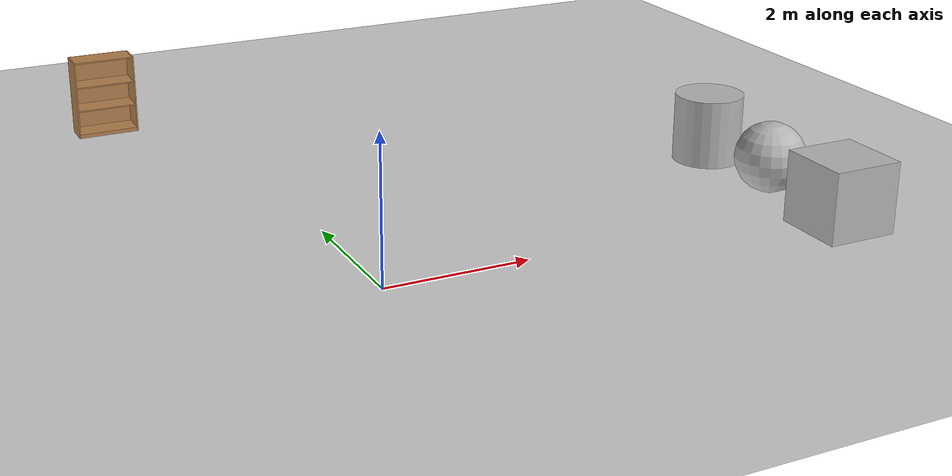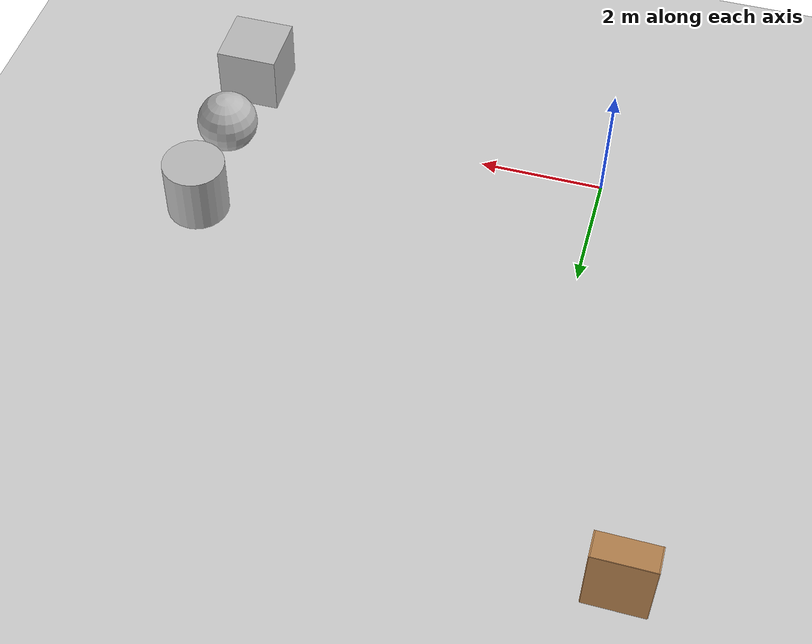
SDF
<sdf version="1.7">
 <world name="default">
  <light name="sun" type="directional">
   <pose>0 0 10 0 -0 0</pose>
   <diffuse>0.8 0.8 0.8 1</diffuse>
   <specular>0.2 0.2 0.2 1</specular>
   <attenuation>
    <range>1000</range>
    <constant>0.9</constant>
    <linear>0.01</linear>
    <quadratic>0.001</quadratic>
   </attenuation>
   <direction>-0.5 0.1 -0.9</direction>
   <spot><inner_angle>0</inner_angle><outer_angle>0</outer_angle><falloff>0</falloff></spot>
  </light>
  <model name="ground_plane">
   <static>1</static>
   <link name="link">
    <collision name="collision">
     <geometry><plane><normal>0 0 1</normal><size>100 100</size></plane></geometry>
     <surface><friction><ode><mu>100</mu><mu2>50</mu2></ode></friction></surface>
    </collision>
    <visual name="visual">
     <cast_shadows>0</cast_shadows>
     <geometry><plane><normal>0 0 1</normal><size>100 100</size></plane></geometry>
     <material>
      <script><uri>file://media/materials/scripts/gazebo.material</uri><name>Gazebo/Grey</name></script>
     </material>
    </visual>
   </link>
  </model>
  <gravity>0 0 -9.8</gravity>
  <magnetic_field>6e-06 2.3e-05 -4.2e-05</magnetic_field>
  <atmosphere type="adiabatic"/>
  <physics type="ode">
   <max_step_size>0.001</max_step_size>
   <real_time_factor>1</real_time_factor>
   <real_time_update_rate>1000</real_time_update_rate>
  </physics>
  <scene><ambient>0.4 0.4 0.4 1</ambient><background>0.7 0.7 0.7 1</background><shadows>1</shadows></scene>
  <spherical_coordinates>
   <surface_model>EARTH_WGS84</surface_model>
   <latitude_deg>0</latitude_deg>
   <longitude_deg>0</longitude_deg>
   <elevation>0</elevation>
   <heading_deg>0</heading_deg>
  </spherical_coordinates>
  <model name="bookshelf">
   <static>1</static>
   <link name="link">
    <inertial><mass>1</mass></inertial>
    <collision name="back">
     <pose>0 0.005 0.6 0 -0 0</pose>
     <geometry><box><size>0.9 0.01 1.2</size></box></geometry>
    </collision>
    <visual name="visual1">
     <pose>0 0.005 0.6 0 -0 0</pose>
     <geometry><box><size>0.9 0.01 1.2</size></box></geometry>
     <material>
      <script><uri>file://media/materials/scripts/gazebo.material</uri><name>Gazebo/Wood</name></script>
     </material>
    </visual>
    <collision name="left_side">
     <pose>0.45 -0.195 0.6 0 -0 0</pose>
     <geometry><box><size>0.02 0.4 1.2</size></box></geometry>
    </collision>
    <visual name="visual2">
     <pose>0.45 -0.195 0.6 0 -0 0</pose>
     <geometry><box><size>0.02 0.4 1.2</size></box></geometry>
     <material>
      <script><uri>file://media/materials/scripts/gazebo.material</uri><name>Gazebo/Wood</name></script>
     </material>
    </visual>
    <collision name="right_side">
     <pose>-0.45 -0.195 0.6 0 -0 0</pose>
     <geometry><box><size>0.02 0.4 1.2</size></box></geometry>
    </collision>
    <visual name="visual3">
     <pose>-0.45 -0.195 0.6 0 -0 0</pose>
     <geometry><box><size>0.02 0.4 1.2</size></box></geometry>
     <material>
      <script><uri>file://media/materials/scripts/gazebo.material</uri><name>Gazebo/Wood</name></script>
     </material>
    </visual>
    <collision name="bottom">
     <pose>0 -0.195 0.03 0 -0 0</pose>
     <geometry><box><size>0.88 0.4 0.06</size></box></geometry>
    </collision>
    <visual name="visual4">
     <pose>0 -0.195 0.03 0 -0 0</pose>
     <geometry><box><size>0.88 0.4 0.06</size></box></geometry>
     <material>
      <script><uri>file://media/materials/scripts/gazebo.material</uri><name>Gazebo/Wood</name></script>
     </material>
    </visual>
    <collision name="top">
     <pose>0 -0.195 1.19 0 -0 0</pose>
     <geometry><box><size>0.88 0.4 0.02</size></box></geometry>
    </collision>
    <visual name="visual5">
     <pose>0 -0.195 1.19 0 -0 0</pose>
     <geometry><box><size>0.88 0.4 0.02</size></box></geometry>
     <material>
      <script><uri>file://media/materials/scripts/gazebo.material</uri><name>Gazebo/Wood</name></script>
     </material>
    </visual>
    <collision name="low_shelf">
     <pose>0 -0.195 0.43 0 -0 0</pose>
     <geometry><box><size>0.88 0.4 0.02</size></box></geometry>
    </collision>
    <visual name="visual6">
     <pose>0 -0.195 0.43 0 -0 0</pose>
     <geometry><box><size>0.88 0.4 0.02</size></box></geometry>
     <material>
      <script><uri>file://media/materials/scripts/gazebo.material</uri><name>Gazebo/Wood</name></script>
     </material>
    </visual>
    <collision name="high_shelf">
     <pose>0 -0.195 0.8 0 -0 0</pose>
     <geometry><box><size>0.88 0.4 0.02</size></box></geometry>
    </collision>
    <visual name="visual7">
     <pose>0 -0.195 0.8 0 -0 0</pose>
     <geometry><box><size>0.88 0.4 0.02</size></box></geometry>
     <material>
      <script><uri>file://media/materials/scripts/gazebo.material</uri><name>Gazebo/Wood</name></script>
     </material>
    </visual>
   </link>
   <pose>-1.55799 7.45467 0 0 -0 0</pose>
  </model>
  <model name="textured_shapes">
   <pose>6.18802 0.67194 0.5 0 -0 0</pose>
   <link name="box">
    <pose>0 -1.5 0 0 -0 0</pose>
    <collision name="collision"><geometry><box><size>1 1 1</size></box></geometry></collision>
    <visual name="visual">
     <geometry><box><size>1 1 1</size></box></geometry>
     <material>
      <script>
       <uri>model://textured_shapes/materials/scripts</uri>
       <uri>model://textured_shapes/materials/textures</uri>
       <name>TexturedShape/Squares</name>
      </script>
     </material>
    </visual>
    <inertial>
     <inertia><ixx>1</ixx><ixy>0</ixy><ixz>0</ixz><iyy>1</iyy><iyz>0</iyz><izz>1</izz></inertia>
     <mass>1</mass>
    </inertial>
   </link>
   <link name="sphere">
    <collision name="collision"><geometry><sphere><radius>0.5</radius></sphere></geometry></collision>
    <visual name="visual">
     <geometry><sphere><radius>0.5</radius></sphere></geometry>
     <material>
      <script>
       <uri>model://textured_shapes/materials/scripts</uri>
       <uri>model://textured_shapes/materials/textures</uri>
       <name>TexturedShape/Squares</name>
      </script>
     </material>
    </visual>
    <inertial>
     <inertia><ixx>1</ixx><ixy>0</ixy><ixz>0</ixz><iyy>1</iyy><iyz>0</iyz><izz>1</izz></inertia>
     <mass>1</mass>
    </inertial>
   </link>
   <link name="cylinder">
    <pose>0 1.5 0 0 -0 0</pose>
    <collision name="collision">
     <geometry><cylinder><radius>0.5</radius><length>1</length></cylinder></geometry>
    </collision>
    <visual name="visual">
     <geometry><cylinder><radius>0.5</radius><length>1</length></cylinder></geometry>
     <material>
      <script>
       <uri>model://textured_shapes/materials/scripts</uri>
       <uri>model://textured_shapes/materials/textures</uri>
       <name>TexturedShape/Squares</name>
      </script>
     </material>
    </visual>
    <inertial>
     <inertia><ixx>1</ixx><ixy>0</ixy><ixz>0</ixz><iyy>1</iyy><iyz>0</iyz><izz>1</izz></inertia>
     <mass>1</mass>
    </inertial>
   </link>
  </model>
 </world>
</sdf>
